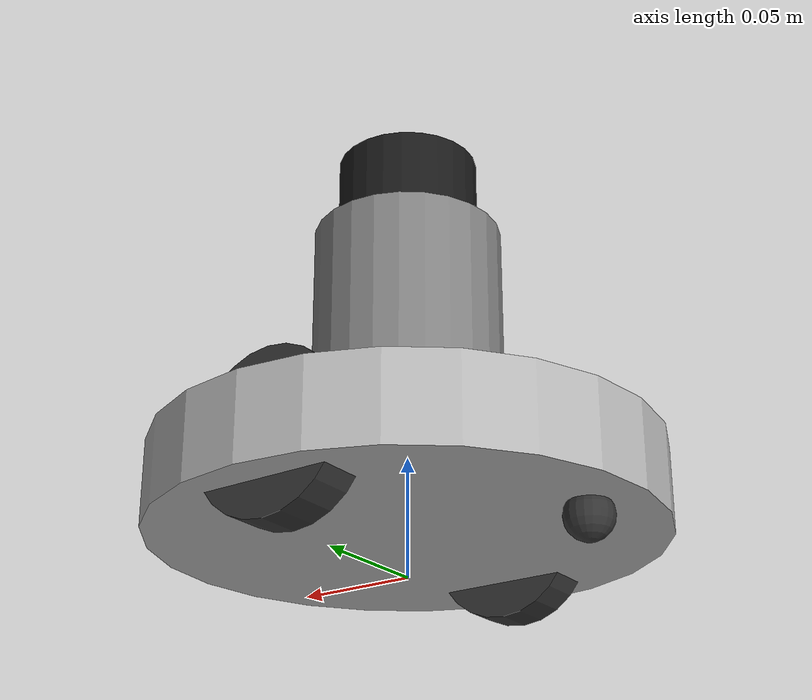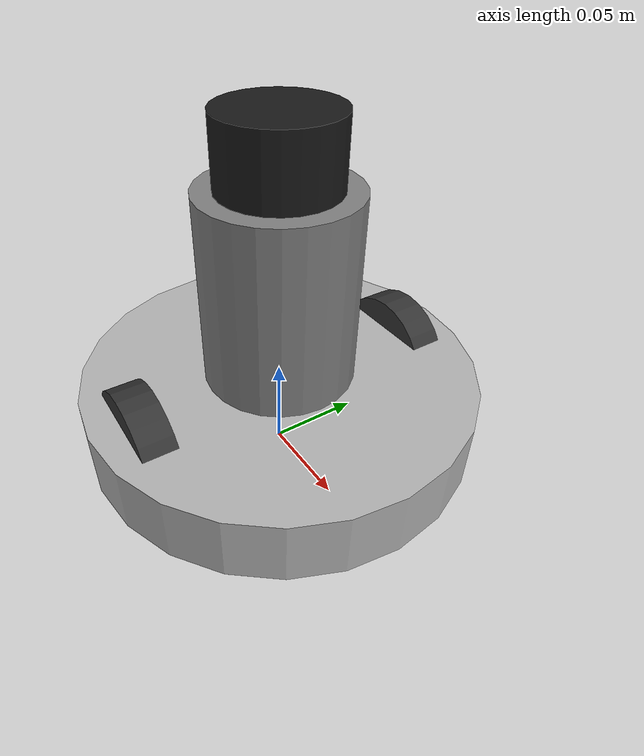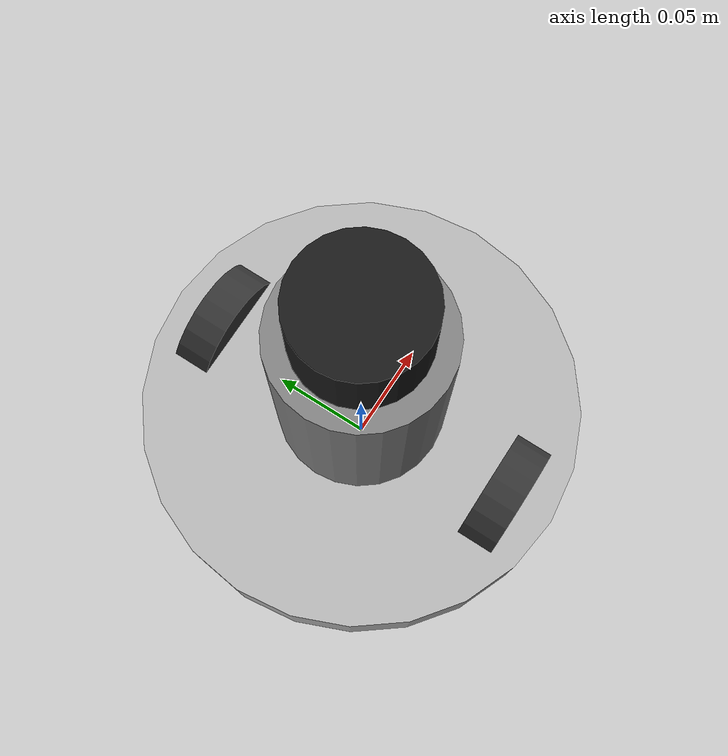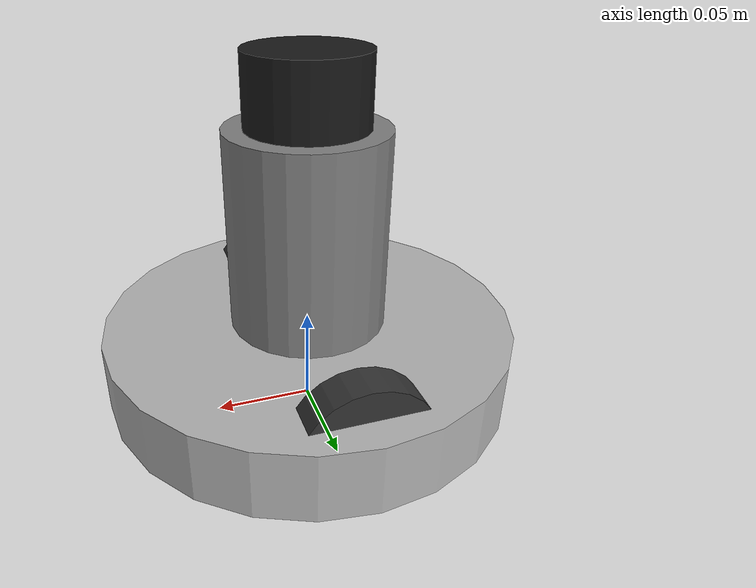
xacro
<?xml version="1.0"?>
<robot xmlns:xacro="http://www.ros.org/wiki/xacro" name="turtlebot">

  <xacro:arg name="is_ignition" default="false"/>
  <xacro:include filename="$(find racademy_turtlebot)/urdf/turtlebot.gazebo.xacro"/>
  <xacro:include filename="$(find racademy_turtlebot)/urdf/turtlebot.ros2_control.xacro"/>

  <!-- TurtleBot3 Burger proportions -->
  <xacro:property name="base_radius"      value="0.105"/>
  <xacro:property name="base_height"      value="0.036"/>
  <xacro:property name="base_mass"        value="0.8"/>

  <xacro:property name="wheel_radius"     value="0.033"/>
  <xacro:property name="wheel_width"      value="0.018"/>
  <xacro:property name="wheel_mass"       value="0.028"/>
  <xacro:property name="wheel_separation" value="0.16"/>

  <!-- Structural column connecting base plate to LiDAR -->
  <xacro:property name="body_radius"      value="0.040"/>
  <xacro:property name="body_height"      value="0.100"/>
  <xacro:property name="body_mass"        value="0.200"/>

  <xacro:property name="lidar_radius"     value="0.030"/>
  <xacro:property name="lidar_height"     value="0.035"/>
  <xacro:property name="lidar_mass"       value="0.125"/>

  <!-- Inertia macros -->
  <xacro:macro name="cylinder_inertia" params="m r h">
    <inertia ixx="${m*(3*r*r+h*h)/12}" ixy="0" ixz="0"
             iyy="${m*(3*r*r+h*h)/12}" iyz="0"
             izz="${m*r*r/2}"/>
  </xacro:macro>

  <!-- A. Base frames -->
  <link name="base_footprint"/>

  <joint name="base_joint" type="fixed">
    <parent link="base_footprint"/>
    <child link="base_link"/>
    <origin xyz="0 0 ${wheel_radius}" rpy="0 0 0"/>
  </joint>

  <link name="base_link">
    <inertial>
      <origin xyz="0 0 0" rpy="0 0 0"/>
      <mass value="${base_mass}"/>
      <xacro:cylinder_inertia m="${base_mass}" r="${base_radius}" h="${base_height}"/>
    </inertial>
    <visual>
      <origin xyz="0 0 0" rpy="0 0 0"/>
      <geometry>
        <cylinder radius="${base_radius}" length="${base_height}"/>
      </geometry>
      <material name="light_grey">
        <color rgba="0.7 0.7 0.7 1.0"/>
      </material>
    </visual>
    <collision>
      <origin xyz="0 0 0" rpy="0 0 0"/>
      <geometry>
        <cylinder radius="${base_radius}" length="${base_height}"/>
      </geometry>
    </collision>
  </link>

  <!-- B. Left wheel -->
  <link name="wheel_left_link">
    <inertial>
      <origin xyz="0 0 0" rpy="0 0 0"/>
      <mass value="${wheel_mass}"/>
      <xacro:cylinder_inertia m="${wheel_mass}" r="${wheel_radius}" h="${wheel_width}"/>
    </inertial>
    <visual>
      <origin xyz="0 0 0" rpy="0 0 0"/>
      <geometry>
        <cylinder radius="${wheel_radius}" length="${wheel_width}"/>
      </geometry>
      <material name="dark_grey">
        <color rgba="0.2 0.2 0.2 1.0"/>
      </material>
    </visual>
    <collision>
      <origin xyz="0 0 0" rpy="0 0 0"/>
      <geometry>
        <cylinder radius="${wheel_radius}" length="${wheel_width}"/>
      </geometry>
    </collision>
  </link>

  <joint name="wheel_left_joint" type="continuous">
    <parent link="base_link"/>
    <child link="wheel_left_link"/>
    <origin xyz="0 ${wheel_separation/2} 0" rpy="-1.5707963 0 0"/>
    <axis xyz="0 0 1"/>
    <limit effort="10.0" velocity="10.0"/>
    <dynamics damping="0.0" friction="0.0"/>
  </joint>

  <!-- C. Right wheel -->
  <link name="wheel_right_link">
    <inertial>
      <origin xyz="0 0 0" rpy="0 0 0"/>
      <mass value="${wheel_mass}"/>
      <xacro:cylinder_inertia m="${wheel_mass}" r="${wheel_radius}" h="${wheel_width}"/>
    </inertial>
    <visual>
      <origin xyz="0 0 0" rpy="0 0 0"/>
      <geometry>
        <cylinder radius="${wheel_radius}" length="${wheel_width}"/>
      </geometry>
      <material name="dark_grey"/>
    </visual>
    <collision>
      <origin xyz="0 0 0" rpy="0 0 0"/>
      <geometry>
        <cylinder radius="${wheel_radius}" length="${wheel_width}"/>
      </geometry>
    </collision>
  </link>

  <joint name="wheel_right_joint" type="continuous">
    <parent link="base_link"/>
    <child link="wheel_right_link"/>
    <origin xyz="0 ${-wheel_separation/2} 0" rpy="-1.5707963 0 0"/>
    <axis xyz="0 0 1"/>
    <limit effort="10.0" velocity="10.0"/>
    <dynamics damping="0.0" friction="0.0"/>
  </joint>

  <!-- D. Passive caster -->
  <link name="caster_link">
    <inertial>
      <origin xyz="0 0 0" rpy="0 0 0"/>
      <mass value="0.01"/>
      <inertia ixx="1e-6" ixy="0" ixz="0" iyy="1e-6" iyz="0" izz="1e-6"/>
    </inertial>
    <visual>
      <origin xyz="0 0 0" rpy="0 0 0"/>
      <geometry><sphere radius="0.010"/></geometry>
      <material name="dark_grey"/>
    </visual>
    <collision>
      <origin xyz="0 0 0" rpy="0 0 0"/>
      <geometry><sphere radius="0.010"/></geometry>
    </collision>
  </link>

  <joint name="caster_joint" type="fixed">
    <parent link="base_link"/>
    <child link="caster_link"/>
    <origin xyz="-0.081 0 ${-wheel_radius+0.010}" rpy="0 0 0"/>
  </joint>

  <!-- E. Structural body column (base plate → LiDAR) -->
  <link name="body_link">
    <inertial>
      <origin xyz="0 0 0" rpy="0 0 0"/>
      <mass value="${body_mass}"/>
      <xacro:cylinder_inertia m="${body_mass}" r="${body_radius}" h="${body_height}"/>
    </inertial>
    <visual>
      <origin xyz="0 0 0" rpy="0 0 0"/>
      <geometry>
        <cylinder radius="${body_radius}" length="${body_height}"/>
      </geometry>
      <material name="mid_grey">
        <color rgba="0.5 0.5 0.5 1.0"/>
      </material>
    </visual>
    <collision>
      <origin xyz="0 0 0" rpy="0 0 0"/>
      <geometry>
        <cylinder radius="${body_radius}" length="${body_height}"/>
      </geometry>
    </collision>
  </link>

  <!-- body center = top-of-base + half-body -->
  <joint name="body_joint" type="fixed">
    <parent link="base_link"/>
    <child link="body_link"/>
    <origin xyz="0 0 ${base_height/2 + body_height/2}" rpy="0 0 0"/>
  </joint>

  <!-- F. LiDAR — sits on top of body column -->
  <link name="lidar_link">
    <inertial>
      <origin xyz="0 0 0" rpy="0 0 0"/>
      <mass value="${lidar_mass}"/>
      <xacro:cylinder_inertia m="${lidar_mass}" r="${lidar_radius}" h="${lidar_height}"/>
    </inertial>
    <visual>
      <origin xyz="0 0 0" rpy="0 0 0"/>
      <geometry>
        <cylinder radius="${lidar_radius}" length="${lidar_height}"/>
      </geometry>
      <material name="lidar_black">
        <color rgba="0.1 0.1 0.1 1.0"/>
      </material>
    </visual>
    <collision>
      <origin xyz="0 0 0" rpy="0 0 0"/>
      <geometry>
        <cylinder radius="${lidar_radius}" length="${lidar_height}"/>
      </geometry>
    </collision>
  </link>

  <!-- lidar center = top-of-body + half-lidar -->
  <joint name="lidar_joint" type="fixed">
    <parent link="body_link"/>
    <child link="lidar_link"/>
    <origin xyz="0 0 ${body_height/2 + lidar_height/2}" rpy="0 0 0"/>
  </joint>

</robot>
